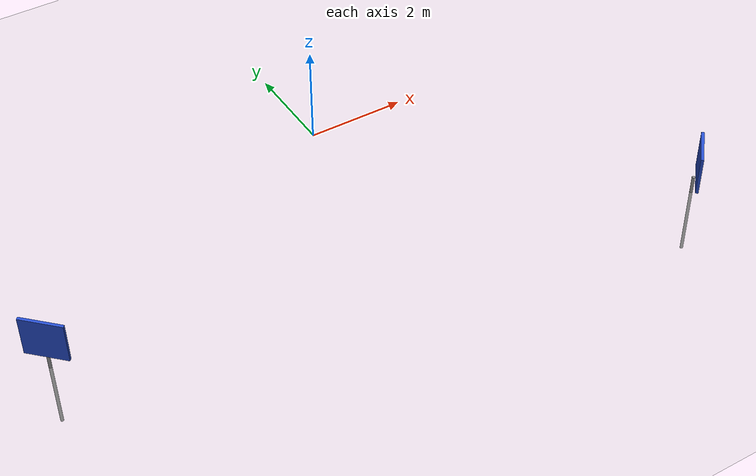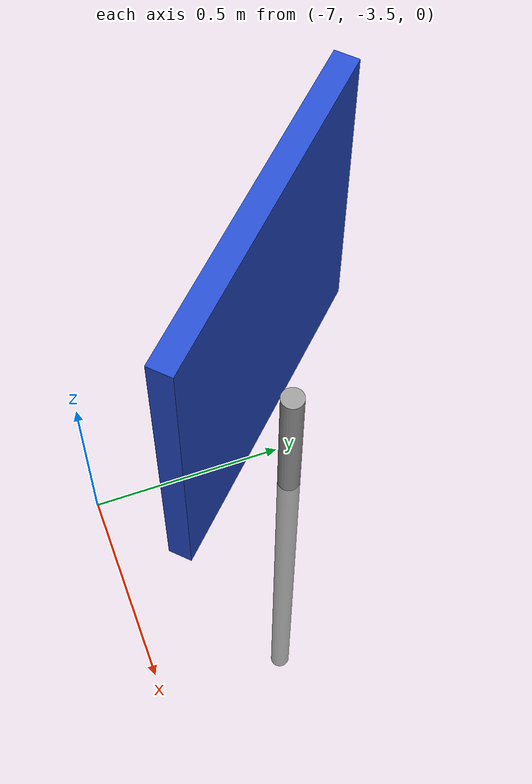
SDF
<sdf version="1.7">
 <world name="default">
  <light name="sun" type="directional">
   <pose>0 0 10 0 -0 0</pose>
   <diffuse>0.8 0.8 0.8 1</diffuse>
   <specular>0.2 0.2 0.2 1</specular>
   <attenuation>
    <range>1000</range>
    <constant>0.9</constant>
    <linear>0.01</linear>
    <quadratic>0.001</quadratic>
   </attenuation>
   <direction>-0.5 0.1 -0.9</direction>
   <spot><inner_angle>0</inner_angle><outer_angle>0</outer_angle><falloff>0</falloff></spot>
  </light>
  <model name="ground_plane">
   <static>1</static>
   <link name="link">
    <collision name="collision">
     <geometry><plane><normal>0 0 1</normal><size>100 100</size></plane></geometry>
     <surface>
      <friction>
       <ode><mu>100</mu><mu2>50</mu2><fdir1>1 0 0</fdir1><slip1>0.5</slip1><slip2>0</slip2></ode>
       <torsional>
        <coefficient>1</coefficient>
        <patch_radius>0</patch_radius>
        <surface_radius>0</surface_radius>
        <use_patch_radius>1</use_patch_radius>
        <ode><slip>0</slip></ode>
       </torsional>
      </friction>
      <bounce><restitution_coefficient>0</restitution_coefficient><threshold>1e+06</threshold></bounce>
      <contact>
       <collide_without_contact>0</collide_without_contact>
       <collide_without_contact_bitmask>1</collide_without_contact_bitmask>
       <collide_bitmask>1</collide_bitmask>
       <ode>
        <soft_cfm>0</soft_cfm>
        <soft_erp>0.2</soft_erp>
        <kp>1e+06</kp>
        <kd>100</kd>
        <max_vel>1</max_vel>
        <min_depth>0.002</min_depth>
       </ode>
       <bullet>
        <split_impulse>1</split_impulse>
        <split_impulse_penetration_threshold>-0.01</split_impulse_penetration_threshold>
        <soft_cfm>0</soft_cfm>
        <soft_erp>0.2</soft_erp>
        <kp>1e+06</kp>
        <kd>100</kd>
       </bullet>
      </contact>
     </surface>
    </collision>
    <visual name="visual">
     <cast_shadows>0</cast_shadows>
     <geometry><plane><normal>0 0 1</normal><size>100 100</size></plane></geometry>
     <material>
      <script><uri>file://media/materials/scripts/gazebo.material</uri><name>Gazebo/Grey</name></script>
     </material>
    </visual>
   </link>
  </model>
  <gravity>0 0 -9.8</gravity>
  <magnetic_field>6e-06 2.3e-05 -4.2e-05</magnetic_field>
  <atmosphere type="adiabatic"/>
  <physics type="ode">
   <max_step_size>0.001</max_step_size>
   <real_time_factor>1</real_time_factor>
   <real_time_update_rate>1000</real_time_update_rate>
  </physics>
  <scene><ambient>0.4 0.4 0.4 1</ambient><background>0.7 0.7 0.7 1</background><shadows>1</shadows></scene>
  <spherical_coordinates>
   <surface_model>EARTH_WGS84</surface_model>
   <latitude_deg>0</latitude_deg>
   <longitude_deg>0</longitude_deg>
   <elevation>0</elevation>
   <heading_deg>0</heading_deg>
  </spherical_coordinates>
  <model name="trafic_sign_ped">
   <link name="link_0">
    <inertial>
     <mass>0.0069833</mass>
     <inertia>
      <ixx>0.00199367</ixx>
      <ixy>0</ixy>
      <ixz>0</ixz>
      <iyy>0.00199367</iyy>
      <iyz>0</iyz>
      <izz>3.29471e-06</izz>
     </inertia>
    </inertial>
    <pose>-0.018801 0.037463 -0.490119 0 -0 0</pose>
    <visual name="visual">
     <geometry><cylinder><radius>0.0307185</radius><length>1.85015</length></cylinder></geometry>
     <material>
      <lighting>1</lighting>
      <script><uri>file://media/materials/scripts/gazebo.material</uri><name>Gazebo/Grey</name></script>
      <shader type="pixel"/>
     </material>
    </visual>
    <collision name="collision">
     <geometry><cylinder><radius>0.030718</radius><length>1.85015</length></cylinder></geometry>
     <surface>
      <friction>
       <ode><mu>1</mu><mu2>1</mu2><fdir1>0 0 0</fdir1><slip1>0</slip1><slip2>0</slip2></ode>
       <torsional>
        <coefficient>1</coefficient>
        <patch_radius>0</patch_radius>
        <surface_radius>0</surface_radius>
        <use_patch_radius>1</use_patch_radius>
        <ode><slip>0</slip></ode>
       </torsional>
      </friction>
      <bounce><restitution_coefficient>0</restitution_coefficient><threshold>1e+06</threshold></bounce>
      <contact>
       <collide_without_contact>0</collide_without_contact>
       <collide_without_contact_bitmask>1</collide_without_contact_bitmask>
       <collide_bitmask>1</collide_bitmask>
       <ode>
        <soft_cfm>0</soft_cfm>
        <soft_erp>0.2</soft_erp>
        <kp>1e+13</kp>
        <kd>1</kd>
        <max_vel>0.01</max_vel>
        <min_depth>0</min_depth>
       </ode>
       <bullet>
        <split_impulse>1</split_impulse>
        <split_impulse_penetration_threshold>-0.01</split_impulse_penetration_threshold>
        <soft_cfm>0</soft_cfm>
        <soft_erp>0.2</soft_erp>
        <kp>1e+13</kp>
        <kd>1</kd>
       </bullet>
      </contact>
     </surface>
    </collision>
   </link>
   <link name="link_1">
    <inertial>
     <mass>0.0398223</mass>
     <inertia>
      <ixx>0.00224834</ixx>
      <ixy>0</ixy>
      <ixz>0</ixz>
      <iyy>0.00452452</iyy>
      <iyz>0</iyz>
      <izz>0.00229886</izz>
     </inertia>
    </inertial>
    <pose>0.018801 -0.037463 0.76703 0 -0 0</pose>
    <visual name="ModelPreview_0::link_1::visual_1">
     <geometry><box><size>0.830252 0.05845 0.821033</size></box></geometry>
     <material>
      <lighting>1</lighting>
      <script><uri>file://media/materials/scripts/gazebo.material</uri><name>Gazebo/Blue</name></script>
      <shader type="pixel"><normal_map>__default__</normal_map></shader>
      <ambient>0 0 1 0</ambient>
      <diffuse>0 0 1 0</diffuse>
      <specular>0 0 1 0</specular>
      <emissive>0 0 1 0</emissive>
     </material>
    </visual>
    <visual name="ModelPreview_0::link_1::visual_2">
     <geometry><box><size>0.830252 0.05845 0.821033</size></box></geometry>
     <material>
      <lighting>1</lighting>
      <script><uri>file://media/materials/scripts/gazebo.material</uri><name>Gazebo/Blue</name></script>
      <shader type="pixel"><normal_map>__default__</normal_map></shader>
      <ambient>0 0 1 0</ambient>
      <diffuse>0 0 1 0</diffuse>
      <specular>0 0 1 0</specular>
      <emissive>0 0 1 0</emissive>
     </material>
    </visual>
    <collision name="collision">
     <geometry><box><size>0.830252 0.05845 0.821033</size></box></geometry>
     <surface>
      <friction>
       <ode><mu>1</mu><mu2>1</mu2><fdir1>0 0 0</fdir1><slip1>0</slip1><slip2>0</slip2></ode>
       <torsional>
        <coefficient>1</coefficient>
        <patch_radius>0</patch_radius>
        <surface_radius>0</surface_radius>
        <use_patch_radius>1</use_patch_radius>
        <ode><slip>0</slip></ode>
       </torsional>
      </friction>
      <bounce><restitution_coefficient>0</restitution_coefficient><threshold>1e+06</threshold></bounce>
      <contact>
       <collide_without_contact>0</collide_without_contact>
       <collide_without_contact_bitmask>1</collide_without_contact_bitmask>
       <collide_bitmask>1</collide_bitmask>
       <ode>
        <soft_cfm>0</soft_cfm>
        <soft_erp>0.2</soft_erp>
        <kp>1e+13</kp>
        <kd>1</kd>
        <max_vel>0.01</max_vel>
        <min_depth>0</min_depth>
       </ode>
       <bullet>
        <split_impulse>1</split_impulse>
        <split_impulse_penetration_threshold>-0.01</split_impulse_penetration_threshold>
        <soft_cfm>0</soft_cfm>
        <soft_erp>0.2</soft_erp>
        <kp>1e+13</kp>
        <kd>1</kd>
       </bullet>
      </contact>
     </surface>
    </collision>
   </link>
   <static>1</static>
   <pose>-6.91501 -3.03921 0 0 0 -0.786256</pose>
  </model>
  <model name="trafic_sign_ped_clone">
   <link name="link_0">
    <inertial>
     <mass>0.0069833</mass>
     <inertia>
      <ixx>0.00199367</ixx>
      <ixy>0</ixy>
      <ixz>0</ixz>
      <iyy>0.00199367</iyy>
      <iyz>0</iyz>
      <izz>3.29471e-06</izz>
     </inertia>
    </inertial>
    <pose>-0.018801 0.037463 -0.490119 0 -0 0</pose>
    <visual name="visual">
     <geometry><cylinder><radius>0.0307185</radius><length>1.85015</length></cylinder></geometry>
     <material>
      <lighting>1</lighting>
      <script><uri>file://media/materials/scripts/gazebo.material</uri><name>Gazebo/Grey</name></script>
      <shader type="pixel"/>
     </material>
    </visual>
    <collision name="collision">
     <geometry><cylinder><radius>0.030718</radius><length>1.85015</length></cylinder></geometry>
     <surface>
      <friction>
       <ode><mu>1</mu><mu2>1</mu2><fdir1>0 0 0</fdir1><slip1>0</slip1><slip2>0</slip2></ode>
       <torsional>
        <coefficient>1</coefficient>
        <patch_radius>0</patch_radius>
        <surface_radius>0</surface_radius>
        <use_patch_radius>1</use_patch_radius>
        <ode><slip>0</slip></ode>
       </torsional>
      </friction>
      <bounce><restitution_coefficient>0</restitution_coefficient><threshold>1e+06</threshold></bounce>
      <contact>
       <collide_without_contact>0</collide_without_contact>
       <collide_without_contact_bitmask>1</collide_without_contact_bitmask>
       <collide_bitmask>1</collide_bitmask>
       <ode>
        <soft_cfm>0</soft_cfm>
        <soft_erp>0.2</soft_erp>
        <kp>1e+13</kp>
        <kd>1</kd>
        <max_vel>0.01</max_vel>
        <min_depth>0</min_depth>
       </ode>
       <bullet>
        <split_impulse>1</split_impulse>
        <split_impulse_penetration_threshold>-0.01</split_impulse_penetration_threshold>
        <soft_cfm>0</soft_cfm>
        <soft_erp>0.2</soft_erp>
        <kp>1e+13</kp>
        <kd>1</kd>
       </bullet>
      </contact>
     </surface>
    </collision>
   </link>
   <link name="link_1">
    <inertial>
     <mass>0.0398223</mass>
     <inertia>
      <ixx>0.00224834</ixx>
      <ixy>0</ixy>
      <ixz>0</ixz>
      <iyy>0.00452452</iyy>
      <iyz>0</iyz>
      <izz>0.00229886</izz>
     </inertia>
    </inertial>
    <pose>0.018801 -0.037463 0.76703 0 -0 0</pose>
    <visual name="ModelPreview_0::link_1::visual_1">
     <geometry><box><size>0.830252 0.05845 0.821033</size></box></geometry>
     <material>
      <lighting>1</lighting>
      <script><uri>file://media/materials/scripts/gazebo.material</uri><name>Gazebo/Blue</name></script>
      <shader type="pixel"><normal_map>__default__</normal_map></shader>
      <ambient>0 0 1 0</ambient>
      <diffuse>0 0 1 0</diffuse>
      <specular>0 0 1 0</specular>
      <emissive>0 0 1 0</emissive>
     </material>
    </visual>
    <visual name="ModelPreview_0::link_1::visual_2">
     <geometry><box><size>0.830252 0.05845 0.821033</size></box></geometry>
     <material>
      <lighting>1</lighting>
      <script><uri>file://media/materials/scripts/gazebo.material</uri><name>Gazebo/Blue</name></script>
      <shader type="pixel"><normal_map>__default__</normal_map></shader>
      <ambient>0 0 1 0</ambient>
      <diffuse>0 0 1 0</diffuse>
      <specular>0 0 1 0</specular>
      <emissive>0 0 1 0</emissive>
     </material>
    </visual>
    <collision name="collision">
     <geometry><box><size>0.830252 0.05845 0.821033</size></box></geometry>
     <surface>
      <friction>
       <ode><mu>1</mu><mu2>1</mu2><fdir1>0 0 0</fdir1><slip1>0</slip1><slip2>0</slip2></ode>
       <torsional>
        <coefficient>1</coefficient>
        <patch_radius>0</patch_radius>
        <surface_radius>0</surface_radius>
        <use_patch_radius>1</use_patch_radius>
        <ode><slip>0</slip></ode>
       </torsional>
      </friction>
      <bounce><restitution_coefficient>0</restitution_coefficient><threshold>1e+06</threshold></bounce>
      <contact>
       <collide_without_contact>0</collide_without_contact>
       <collide_without_contact_bitmask>1</collide_without_contact_bitmask>
       <collide_bitmask>1</collide_bitmask>
       <ode>
        <soft_cfm>0</soft_cfm>
        <soft_erp>0.2</soft_erp>
        <kp>1e+13</kp>
        <kd>1</kd>
        <max_vel>0.01</max_vel>
        <min_depth>0</min_depth>
       </ode>
       <bullet>
        <split_impulse>1</split_impulse>
        <split_impulse_penetration_threshold>-0.01</split_impulse_penetration_threshold>
        <soft_cfm>0</soft_cfm>
        <soft_erp>0.2</soft_erp>
        <kp>1e+13</kp>
        <kd>1</kd>
       </bullet>
      </contact>
     </surface>
    </collision>
   </link>
   <static>1</static>
   <pose>5.3656 -5.31659 -0.07438 0 -0 0.858465</pose>
  </model>
 </world>
</sdf>
